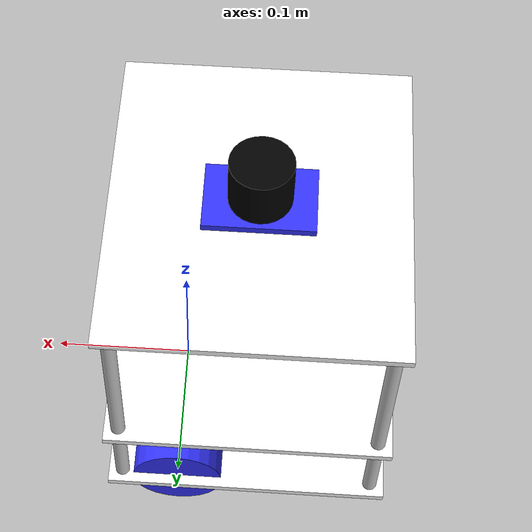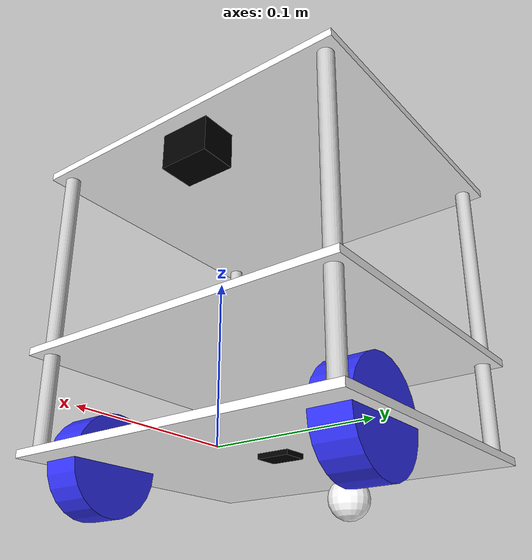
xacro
<?xml version="1.0"?>
<robot xmlns:xacro="http://www.ros.org/wiki/xacro" name="super_robot">

  <xacro:include filename="inertial_macros.xacro"/>
  <xacro:include filename="robot_core.xacro"/>
  <xacro:include filename="robot_sensors.xacro"/>

  <xacro:include filename="ros2_control.xacro"/>

</robot>

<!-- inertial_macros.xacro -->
<robot xmlns:xacro="http://www.ros.org/wiki/xacro">

  <!-- Sphere: I = 2/5 * m * r^2 -->
  <xacro:macro name="inertial_sphere" params="mass radius *origin">
    <inertial>
      <xacro:insert_block name="origin"/>
      <mass value="${mass}"/>
      <inertia ixx="${(2/5)*mass*(radius*radius)}" ixy="0" ixz="0"
               iyy="${(2/5)*mass*(radius*radius)}" iyz="0"
               izz="${(2/5)*mass*(radius*radius)}"/>
    </inertial>
  </xacro:macro>

  <!-- Box: Ixx=m(y²+z²)/12, etc. -->
  <xacro:macro name="inertial_box" params="mass x y z *origin">
    <inertial>
      <xacro:insert_block name="origin"/>
      <mass value="${mass}"/>
      <inertia ixx="${(1/12)*mass*(y*y+z*z)}" ixy="0" ixz="0"
               iyy="${(1/12)*mass*(x*x+z*z)}" iyz="0"
               izz="${(1/12)*mass*(x*x+y*y)}"/>
    </inertial>
  </xacro:macro>

  <!-- Cylinder (axis Z): Ixx=Iyy=m(3r²+l²)/12, Izz=mr²/2 -->
  <xacro:macro name="inertial_cylinder" params="mass length radius *origin">
    <inertial>
      <xacro:insert_block name="origin"/>
      <mass value="${mass}"/>
      <inertia ixx="${(1/12)*mass*(3*radius*radius+length*length)}" ixy="0" ixz="0"
               iyy="${(1/12)*mass*(3*radius*radius+length*length)}" iyz="0"
               izz="${(1/2)*mass*(radius*radius)}"/>
    </inertial>
  </xacro:macro>

</robot>

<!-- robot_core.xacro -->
<robot xmlns:xacro="http://www.ros.org/wiki/xacro">

  <xacro:include filename="inertial_macros.xacro"/>
  <xacro:property name="my_pi" value="${pi if has_property('pi') else 3.14159}" />

  <material name="black">  <color rgba="0 0 0 1"/>       </material>
  <material name="white">  <color rgba="1 1 1 1"/>       </material>
  <material name="blue">   <color rgba="0.2 0.2 1 1"/>   </material>
  <material name="silver"> <color rgba="0.8 0.8 0.8 1"/> </material>

  <link name="odom"/>
  <link name="base_link"/>

  <joint name="base_footprint_joint" type="fixed">
    <parent link="base_link"/>
    <child link="base_footprint"/>
    <origin xyz="0 0 0" rpy="0 0 0"/>
  </joint>

  <link name="base_footprint"></link>

  <joint name="base_link_joint" type="fixed">
    <parent link="odom"/>
    <child link="base_link"/>
    <origin xyz="0 0 0" rpy="0 0 0"/>
  </joint>

  <!-- ===== Нижняя платформа ===== -->
  <!-- base_link теперь в центре колёс, корпус смещён назад на -0.05 -->
  <joint name="base_plate_joint" type="fixed">
    <parent link="base_link"/>
    <child link="base_plate"/>
    <origin xyz="-0.05 0 0" rpy="0 0 0"/>
  </joint>
  <link name="base_plate">
    <visual>
      <origin xyz="0 0 0.0025" rpy="0 0 0"/>
      <geometry><box size="0.2 0.23 0.005"/></geometry>
      <material name="white"/>
    </visual>
    <collision>
      <origin xyz="0 0 0.0025" rpy="0 0 0"/>
      <geometry><box size="0.2 0.23 0.005"/></geometry>
    </collision>
    <xacro:inertial_box mass="1.5" x="0.2" y="0.23" z="0.005">
      <origin xyz="0 0 0.0025" rpy="0 0 0"/>
    </xacro:inertial_box>
  </link>

  <gazebo reference="base_plate">
    <material>
      Gazebo/White
    </material>
  </gazebo>

  <!-- ===== Четыре стойки ===== -->
  <xacro:macro name="rod" params="name x y material_name:=silver gazebo_color:=Gazebo/Black">
    <joint name="${name}_joint" type="fixed">
      <parent link="base_plate"/>
      <child link="${name}"/>
      <origin xyz="0 0 0" rpy="0 0 0"/>
    </joint>
    <link name="${name}">
      <visual>
        <origin xyz="${x} ${y} 0.1" rpy="0 0 0"/>
        <geometry><cylinder length="0.19" radius="0.005"/></geometry>
        <material name="${material_name}"/>
      </visual>
      <collision>
        <origin xyz="${x} ${y} 0.1" rpy="0 0 0"/>
        <geometry><cylinder length="0.19" radius="0.005"/></geometry>
      </collision>
      <xacro:inertial_cylinder mass="0.05" length="0.19" radius="0.005">
        <origin xyz="${x} ${y} 0.1" rpy="0 0 0"/>
      </xacro:inertial_cylinder>
    </link>
  </xacro:macro>

  <xacro:rod name="rod_front_left"  x=" 0.09" y=" 0.105"/>
  <xacro:rod name="rod_front_right" x=" 0.09" y="-0.105"/>
  <xacro:rod name="rod_rear_left"   x="-0.09" y=" 0.105"/>
  <xacro:rod name="rod_rear_right"  x="-0.09" y="-0.105"/>

  <!-- ===== Колёса: x=0, base_link теперь их центр ===== -->
  <joint name="left_wheel_joint" type="continuous">
    <parent link="base_link"/>
    <child link="left_wheel"/>
    <origin xyz="0 0.095 0" rpy="0 0 0"/>
    <axis xyz="0 1 0"/>
    <limit effort="200.0" velocity="20.0"/>
  </joint>
  <link name="left_wheel">
    <visual>
      <origin xyz="0 0 0" rpy="${pi/2} 0 0"/>
      <geometry><cylinder length="0.025" radius="0.0325"/></geometry>
      <material name="blue"/>
    </visual>
    <collision>
      <origin xyz="0 0 0" rpy="${pi/2} 0 0"/>
      <geometry><cylinder length="0.025" radius="0.0325"/></geometry>
    </collision>
    <xacro:inertial_cylinder mass="1.0" length="0.025" radius="0.0325">
      <origin xyz="0 0 0" rpy="0 0 0"/>
    </xacro:inertial_cylinder>
  </link>

  <gazebo reference="left_wheel">
    <material>
      Gazebo/Blue
    </material>
  </gazebo>

  <joint name="right_wheel_joint" type="continuous">
    <parent link="base_link"/>
    <child link="right_wheel"/>
    <origin xyz="0 -0.095 0" rpy="0 0 0"/>
    <axis xyz="0 1 0"/>
    <limit effort="200.0" velocity="20.0"/>
  </joint>
  <link name="right_wheel">
    <visual>
      <origin xyz="0 0 0" rpy="${pi/2} 0 0"/>
      <geometry><cylinder length="0.025" radius="0.0325"/></geometry>
      <material name="blue"/>
    </visual>
    <collision>
      <origin xyz="0 0 0" rpy="${pi/2} 0 0"/>
      <geometry><cylinder length="0.025" radius="0.0325"/></geometry>
    </collision>
    <xacro:inertial_cylinder mass="1.0" length="0.025" radius="0.0325">
      <origin xyz="0 0 0" rpy="0 0 0"/>
    </xacro:inertial_cylinder>
  </link>

  <gazebo reference="right_wheel">
    <material>
      Gazebo/Blue
    </material>
  </gazebo>

  <!-- ===== Кастер: было x=-0.09, теперь x=-0.14 ===== -->
  <joint name="caster_wheel_joint" type="fixed">
    <parent link="base_link"/>
    <child link="caster_wheel"/>
    <origin xyz="-0.14 0 -0.01" rpy="0 0 0"/>
  </joint>
  <link name="caster_wheel">
    <visual>
      <origin xyz="0 0 0" rpy="0 0 0"/>
      <geometry><sphere radius="0.015"/></geometry>
      <material name="white"/>
    </visual>
    <collision>
      <origin xyz="0 0 0" rpy="0 0 0"/>
      <geometry><sphere radius="0.015"/></geometry>
    </collision>
    <xacro:inertial_sphere mass="0.1" radius="0.015">
      <origin xyz="0 0 0" rpy="0 0 0"/>
    </xacro:inertial_sphere>
  </link>

  <gazebo reference="caster_wheel">
    <material>
      Gazebo/Blue
    </material>
    <mu1>0.01</mu1>
    <mu2>0.01</mu2>
    <kp>1000000.0</kp>
    <kd>1.0</kd>
  </gazebo>

  <!-- ===== Средняя плата электроники ===== -->
  <joint name="electronics_plate_joint" type="fixed">
    <parent link="base_plate"/>
    <child link="electronics_plate"/>
    <origin xyz="0 0 0.065" rpy="0 0 0"/>
  </joint>
  <link name="electronics_plate">
    <visual>
      <origin xyz="0 0 0.0025" rpy="0 0 0"/>
      <geometry><box size="0.2 0.23 0.005"/></geometry>
      <material name="white"/>
    </visual>
    <collision>
      <origin xyz="0 0 0.0025" rpy="0 0 0"/>
      <geometry><box size="0.2 0.23 0.005"/></geometry>
    </collision>
    <xacro:inertial_box mass="0.3" x="0.2" y="0.23" z="0.005">
      <origin xyz="0 0 0.0025" rpy="0 0 0"/>
    </xacro:inertial_box>
  </link>

  <gazebo reference="electronics_plate">
    <material>
      Gazebo/White
    </material>
  </gazebo>

  <!-- ===== Верхняя платформа ===== -->
  <joint name="top_plate_joint" type="fixed">
    <parent link="electronics_plate"/>
    <child link="top_plate"/>
    <origin xyz="0 0 0.130" rpy="0 0 0"/>
  </joint>
  <link name="top_plate">
    <visual>
      <origin xyz="0 0 0.0025" rpy="0 0 0"/>
      <geometry><box size="0.2 0.23 0.005"/></geometry>
      <material name="white"/>
    </visual>
    <collision>
      <origin xyz="0 0 0.0025" rpy="0 0 0"/>
      <geometry><box size="0.2 0.23 0.005"/></geometry>
    </collision>
    <xacro:inertial_box mass="0.8" x="0.2" y="0.23" z="0.005">
      <origin xyz="0 0 0.0025" rpy="0 0 0"/>
    </xacro:inertial_box>
  </link>

  <gazebo reference="top_plate">
    <material>
      Gazebo/White
    </material>
  </gazebo>

</robot>

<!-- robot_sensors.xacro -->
<robot xmlns:xacro="http://www.ros.org/wiki/xacro">

  <xacro:include filename="inertial_macros.xacro"/>

  <!-- ===== Фанерная прослойка под лидаром ===== -->
  <joint name="lidar_base_joint" type="fixed">
    <parent link="top_plate"/>
    <child link="lidar_base"/>
    <origin xyz="0 0 0.005" rpy="0 0 0"/>
    <preserveFixedJoint>true</preserveFixedJoint>
  </joint>
  <link name="lidar_base">
    <visual>
      <origin xyz="0 0 0.0025" rpy="0 0 0"/>
      <geometry><box size="0.075 0.05 0.005"/></geometry>
      <material name="blue"/>
    </visual>
    <collision>
      <origin xyz="0 0 0.0025" rpy="0 0 0"/>
      <geometry><box size="0.075 0.05 0.005"/></geometry>
    </collision>
    <xacro:inertial_box mass="0.05" x="0.075" y="0.05" z="0.005">
      <origin xyz="0 0 0.0025" rpy="0 0 0"/>
    </xacro:inertial_box>
  </link>

  <!-- ===== RPLidar C1: цилиндр d=43мм h=41.3мм ===== -->
  <!-- lidar_link помещён на высоту луча лазера (29.88мм от основания),  -->
  <!-- чтобы фрейм сканирования совпадал с реальным положением луча      -->
  <joint name="lidar_joint" type="fixed">
    <parent link="lidar_base"/>
    <child link="lidar_link"/>
    <origin xyz="0 0 0.02988" rpy="0 0 0"/>
    <preserveFixedJoint>true</preserveFixedJoint>
  </joint>

  <gazebo reference="lidar_joint">
    <preserveFixedJoint>true</preserveFixedJoint>
  </gazebo>

  <link name="lidar_link">
    <visual>
      <!-- визуал смещён вниз так чтобы основание цилиндра лежало на фанере -->
      <origin xyz="0 0 ${0.02065 - 0.02988}" rpy="0 0 0"/>
      <geometry><cylinder radius="0.0215" length="0.0413"/></geometry>
      <material name="black"/>
    </visual>
    <collision>
      <origin xyz="0 0 ${0.02065 - 0.02988}" rpy="0 0 0"/>
      <geometry><cylinder radius="0.0215" length="0.0413"/></geometry>
    </collision>
    <xacro:inertial_cylinder mass="0.11" length="0.0413" radius="0.0215">
      <origin xyz="0 0 ${0.02065 - 0.02988}" rpy="0 0 0"/>
    </xacro:inertial_cylinder>
  </link>

  <gazebo reference="lidar_link">
    <sensor name="gpu_lidar" type="gpu_lidar">
      <topic>/scan_gz</topic>
      <update_rate>10</update_rate>
      <lidar>
        <scan>
          <horizontal>
            <samples>360</samples>
            <resolution>1</resolution>
            <min_angle>-3.14159</min_angle>
            <max_angle>3.14159</max_angle>
          </horizontal>
        </scan>
        <range>
          <min>0.05</min>
          <max>12.0</max>
          <resolution>0.01</resolution>
        </range>
      </lidar>
      <always_on>true</always_on>
      <visualize>true</visualize>
    </sensor>
  </gazebo>

  <!-- ===== Камера ===== -->
  <joint name="camera_joint" type="fixed">
    <parent link="base_link"/>
    <child link="camera_link"/>
    <!-- x=0.027: смещение вперёд; z=0.195: высота камеры -->
    <!-- rpy: камера перевёрнута, повёрнута на pi/2 по Y чтобы смотреть вдоль X -->
    <origin xyz="0.027 0 0.183" rpy="0 ${pi/2} 0"/>
  </joint>
  <link name="camera_link">
    <visual>
      <origin xyz="0 0 0" rpy="0 0 0"/>
      <geometry><box size="0.025 0.035 0.025"/></geometry>
      <material name="black"/>
    </visual>
    <collision>
      <origin xyz="0 0 0" rpy="0 0 0"/>
      <geometry><box size="0.025 0.035 0.025"/></geometry>
    </collision>
    <xacro:inertial_box mass="0.1" x="0.025" y="0.035" z="0.025">
      <origin xyz="0 0 0" rpy="0 0 0"/>
    </xacro:inertial_box>
  </link>

  <gazebo reference="camera_link">
    <material>
      Gazebo/Black
    </material>
  </gazebo>

  <joint name="camera_optical_joint" type="fixed">
    <parent link="camera_link"/>
    <child link="camera_optical_frame"/>
    <origin xyz="0 0 0" rpy="${-pi/2} 0 ${-pi/2}"/>
  </joint>
  <link name="camera_optical_frame"/>

  <joint name="imu_link" type="fixed">
    <parent link="base_link"/>
    <child link="imu_link"/>
    <origin xyz="-0.016 0.032 -0.007" rpy="0 0 -3.14159"/>
  </joint>
  <link name="imu_link">
    <visual>
      <origin xyz="0 0 0" rpy="0 0 0"/>
      <geometry><box size="0.015 0.02 0.003"/></geometry>
      <material name="black"/>
    </visual>
    <collision>
      <origin xyz="0 0 0" rpy="0 0 0"/>
      <geometry><box size="0.015 0.02 0.003"/></geometry>
    </collision>
    <xacro:inertial_box mass="0.002" x="0.015" y="0.02" z="0.003">
       <origin xyz="0 0 0" rpy="0 0 0"/>
    </xacro:inertial_box>
  </link>

</robot>
